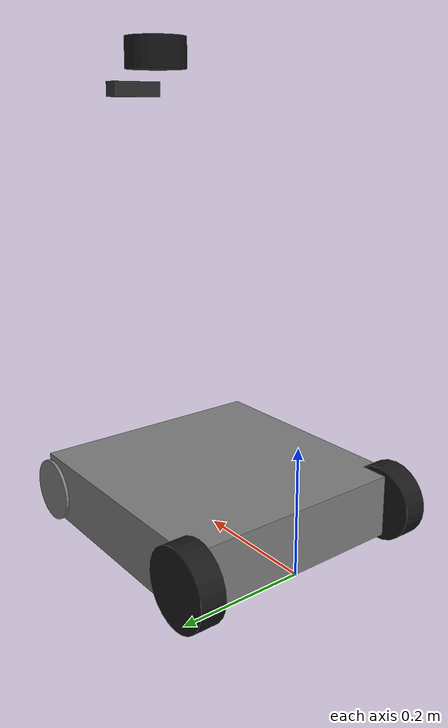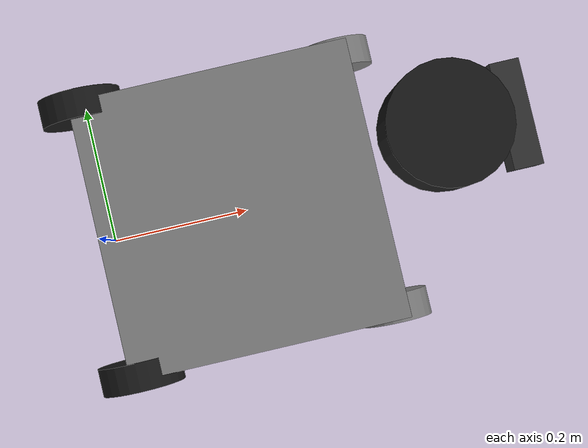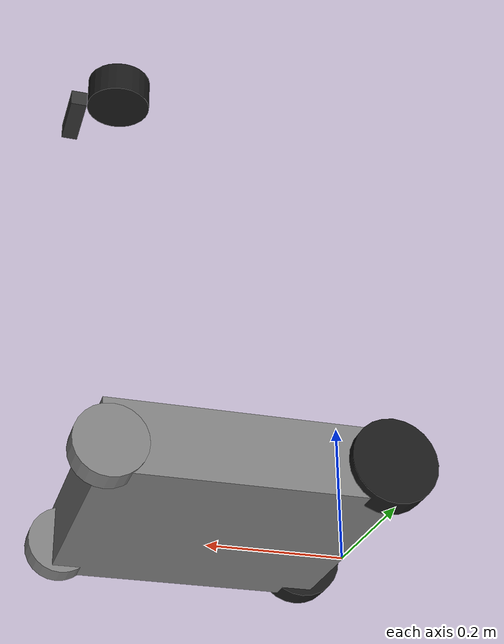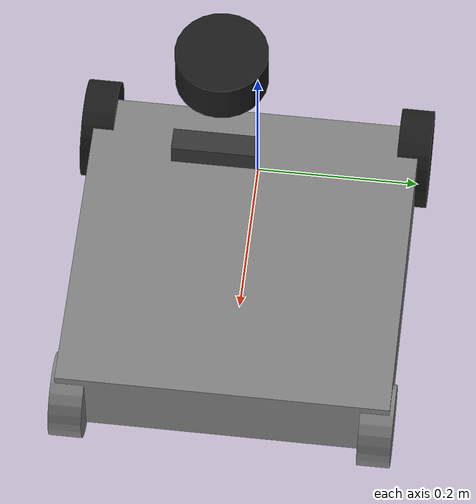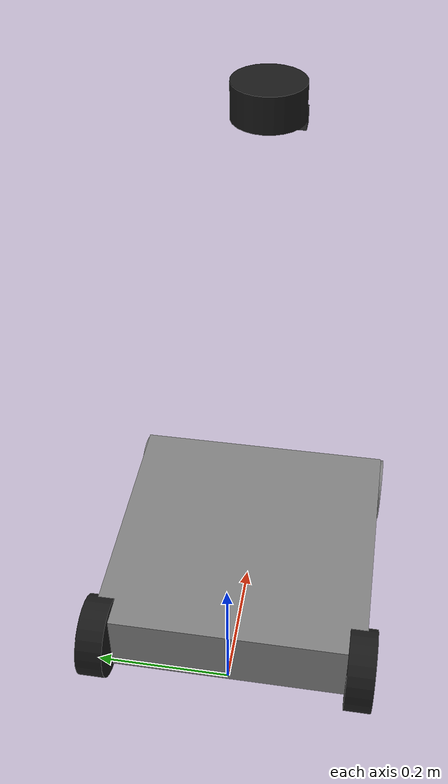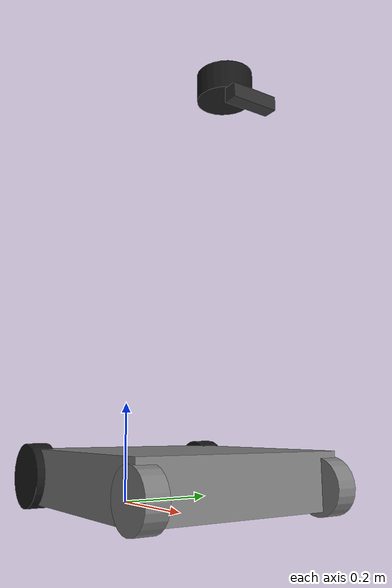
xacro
<?xml version="1.0"?>
<robot name="super_coffee_car" xmlns:xacro="http://www.ros.org/wiki/xacro">

    <xacro:property name="wheelbase" value="0.375" />
    <xacro:property name="rear_track" value="0.39" />
    <xacro:property name="front_track" value="0.37" />

    <xacro:property name="chassis_length" value="0.40" />
    <xacro:property name="chassis_width" value="0.40" />
    <xacro:property name="chassis_height" value="0.10" />
    <xacro:property name="chassis_mass" value="5.0" />

    <xacro:property name="rear_wheel_diameter" value="0.12" />
    <xacro:property name="rear_wheel_radius" value="${rear_wheel_diameter / 2}" />
    <xacro:property name="rear_wheel_width" value="0.04" />
    <xacro:property name="rear_wheel_mass" value="0.5" />

    <xacro:property name="caster_diameter" value="0.10" />
    <xacro:property name="caster_radius" value="${caster_diameter / 2}" />
    <xacro:property name="caster_width" value="0.04" />
    <xacro:property name="caster_mass" value="0.2" />

    <xacro:property name="lidar_offset_x" value="0.35" />
    <xacro:property name="lidar_height_ground" value="0.755" />
    <xacro:property name="lidar_tilt_angle" value="0.0" />

    <xacro:property name="camera_offset_x" value="0.42" />
    <xacro:property name="camera_height_ground" value="0.70" />

    <xacro:property name="lidar_radius" value="0.05" />
    <xacro:property name="lidar_height" value="0.05" />
    <xacro:property name="camera_width" value="0.09" />
    <xacro:property name="camera_height" value="0.025" />
    <xacro:property name="camera_depth" value="0.025" />

    <xacro:property name="PI" value="3.1415926535" />

    <xacro:macro name="Box_inertial_matrix" params="m l w h">
      <inertial>
        <mass value="${m}" />
        <inertia ixx="${m*(h*h + l*l)/12}" ixy = "0" ixz = "0"
                 iyy="${m*(w*w + l*l)/12}" iyz= "0"
                 izz="${m*(w*w + h*h)/12}" />
      </inertial>
    </xacro:macro>

    <xacro:macro name="cylinder_inertial_matrix" params="m r h">
      <inertial>
        <mass value="${m}" />
        <inertia ixx="${m*(3*r*r+h*h)/12}" ixy = "0" ixz = "0"
                 iyy="${m*(3*r*r+h*h)/12}" iyz = "0"
                 izz="${m*r*r/2}" />
      </inertial>
    </xacro:macro>

    <link name="base_footprint" />

    <link name="base_link">
        <visual>
            <origin xyz="${wheelbase / 2} 0 0" rpy="0 0 0"/>
            <geometry>
                <box size="${chassis_length} ${chassis_width} ${chassis_height}"/>
            </geometry>
            <material name="grey">
                <color rgba="0.5 0.5 0.5 1.0"/>
            </material>
        </visual>
        <collision>
            <origin xyz="${wheelbase / 2} 0 0" rpy="0 0 0"/>
            <geometry>
                <box size="${chassis_length} ${chassis_width} ${chassis_height}"/>
            </geometry>
        </collision>
        <inertial>
            <mass value="${chassis_mass}" />
            <origin xyz="${wheelbase / 2} 0 0" rpy="0 0 0"/>
            <inertia ixx="${chassis_mass*(chassis_height*chassis_height + chassis_length*chassis_length)/12}" ixy = "0" ixz = "0"
                     iyy="${chassis_mass*(chassis_width*chassis_width + chassis_length*chassis_length)/12}" iyz= "0"
                     izz="${chassis_mass*(chassis_width*chassis_width + chassis_height*chassis_height)/12}" />
        </inertial>
    </link>

    <joint name="base_footprint_to_base_link" type="fixed">
        <parent link="base_footprint"/>
        <child link="base_link"/>
        <origin xyz="0 0 ${rear_wheel_radius}" rpy="0 0 0"/>
    </joint>

    <xacro:macro name="driving_wheel" params="prefix side reflect">
        <link name="${prefix}_${side}_wheel_link">
            <visual>
                <origin xyz="0 0 0" rpy="${PI/2} 0 0"/>
                <geometry>
                    <cylinder radius="${rear_wheel_radius}" length="${rear_wheel_width}"/>
                </geometry>
                <material name="black">
                    <color rgba="0.1 0.1 0.1 1.0"/>
                </material>
            </visual>
            <collision>
                <origin xyz="0 0 0" rpy="${PI/2} 0 0"/>
                <geometry>
                    <cylinder radius="${rear_wheel_radius}" length="${rear_wheel_width}"/>
                </geometry>
            </collision>
            <xacro:cylinder_inertial_matrix m="${rear_wheel_mass}" r="${rear_wheel_radius}" h="${rear_wheel_width}"/>
        </link>

        <joint name="${prefix}_${side}_wheel_joint" type="continuous">
            <parent link="base_link"/>
            <child link="${prefix}_${side}_wheel_link"/>
            <origin xyz="0 ${reflect * rear_track / 2} 0" rpy="0 0 0"/>
            <axis xyz="0 1 0"/>
        </joint>

        <gazebo reference="${prefix}_${side}_wheel_link">
            <material>Gazebo/Black</material>
        </gazebo>
    </xacro:macro>

    <xacro:macro name="caster_wheel" params="prefix side reflect">
        <link name="${prefix}_${side}_wheel_link">
            <visual>
                <origin xyz="0 0 0" rpy="${PI/2} 0 0"/>
                <geometry>
                    <cylinder radius="${caster_radius}" length="${caster_width}"/>
                </geometry>
                <material name="grey"/>
            </visual>
            <collision>
                <origin xyz="0 0 0" rpy="${PI/2} 0 0"/>
                <geometry>
                    <cylinder radius="${caster_radius}" length="${caster_width}"/>
                </geometry>
            </collision>
            <xacro:cylinder_inertial_matrix m="${caster_mass}" r="${caster_radius}" h="${caster_width}"/>
        </link>

        <joint name="${prefix}_${side}_wheel_joint" type="continuous">
            <parent link="base_link"/>
            <child link="${prefix}_${side}_wheel_link"/>
            <origin xyz="${wheelbase} ${reflect * front_track / 2} ${caster_radius - rear_wheel_radius}" rpy="0 0 0"/>
            <axis xyz="0 1 0"/>
        </joint>

        <gazebo reference="${prefix}_${side}_wheel_link">
            <material>Gazebo/Grey</material>
            <mu1>0.0</mu1>
            <mu2>0.0</mu2>
        </gazebo>
    </xacro:macro>

    <xacro:driving_wheel prefix="rear" side="left" reflect="1"/>
    <xacro:driving_wheel prefix="rear" side="right" reflect="-1"/>

    <xacro:caster_wheel prefix="front" side="left" reflect="1"/>
    <xacro:caster_wheel prefix="front" side="right" reflect="-1"/>

    <link name="mid360_link">
        <visual>
            <geometry>
                <cylinder radius="${lidar_radius}" length="${lidar_height}"/>
            </geometry>
            <material name="black"/>
        </visual>
        <collision>
            <geometry>
                <cylinder radius="${lidar_radius}" length="${lidar_height}"/>
            </geometry>
        </collision>
        <xacro:cylinder_inertial_matrix m="0.2" r="${lidar_radius}" h="${lidar_height}"/>
    </link>

    <joint name="mid360_joint" type="fixed">
        <parent link="base_link"/>
        <child link="mid360_link"/>
        <origin xyz="${lidar_offset_x} 0 ${lidar_height_ground - rear_wheel_radius}" rpy="0 -${lidar_tilt_angle} 0"/>
    </joint>

    <link name="camera_link">
        <visual>
            <geometry>
                <box size="${camera_depth} ${camera_width} ${camera_height}"/>
            </geometry>
            <material name="dark_grey">
                <color rgba="0.2 0.2 0.2 1.0"/>
            </material>
        </visual>
        <collision>
            <geometry>
                <box size="${camera_depth} ${camera_width} ${camera_height}"/>
            </geometry>
        </collision>
        <xacro:Box_inertial_matrix m="0.1" l="${camera_depth}" w="${camera_width}" h="${camera_height}"/>
    </link>

    <joint name="d435i_joint" type="fixed">
        <parent link="base_link"/>
        <child link="camera_link"/>
        <origin xyz="${camera_offset_x} 0 ${camera_height_ground - rear_wheel_radius}"
                rpy="0 0 0"/>
    </joint>

    <gazebo>
        <plugin name="differential_drive_controller" filename="libgazebo_ros_diff_drive.so">
            <robotNamespace>/</robotNamespace>
            <odometrySource>0</odometrySource>
            <publishWheelTF>false</publishWheelTF>
            <publishTf>1</publishTf>
            <publishWheelJointState>true</publishWheelJointState>
            <updateRate>100.0</updateRate>

            <leftJoint>rear_left_wheel_joint</leftJoint>
            <rightJoint>rear_right_wheel_joint</rightJoint>

            <wheelSeparation>${rear_track}</wheelSeparation>
            <wheelDiameter>${rear_wheel_diameter}</wheelDiameter>

            <wheelTorque>50</wheelTorque>
            <wheelAcceleration>3.0</wheelAcceleration>

            <commandTopic>cmd_vel</commandTopic>
            <odometryFrame>odom</odometryFrame>
            <odometryTopic>odom</odometryTopic>
            <robotBaseFrame>base_footprint</robotBaseFrame>
        </plugin>
    </gazebo>

    <gazebo reference="mid360_link">
      <material>Gazebo/Black</material>
      <sensor type="gpu_ray" name="mid360_sensor">
        <pose>0 0 0 0 0 0</pose>
        <visualize>true</visualize>
        <update_rate>10</update_rate>
        <ray>
          <scan>
            <horizontal>
              <samples>360</samples>
              <resolution>1</resolution>
              <min_angle>-${PI}</min_angle>
              <max_angle>${PI}</max_angle>
            </horizontal>
            <vertical>
              <samples>16</samples>
              <resolution>1</resolution>
              <min_angle>-${10*PI/180}</min_angle>
              <max_angle>${70*PI/180}</max_angle>
            </vertical>
          </scan>
          <range>
            <min>0.1</min>
            <max>30.0</max>
            <resolution>0.01</resolution>
          </range>
          <noise>
            <type>gaussian</type>
            <mean>0.0</mean>
            <stddev>0.01</stddev>
          </noise>
        </ray>
        <plugin name="gazebo_ros_gpu_laser" filename="libgazebo_ros_gpu_laser.so">
          <topicName>/mid360/points</topicName>
          <frameName>mid360_link</frameName>
        </plugin>
      </sensor>
    </gazebo>

    <gazebo reference="camera_link">
        <sensor type="depth" name="d435i_camera">
            <always_on>true</always_on>
            <update_rate>20.0</update_rate>
            <camera>
                <horizontal_fov>1.089</horizontal_fov>
                <image>
                    <format>R8G8B8</format>
                    <width>640</width>
                    <height>480</height>
                </image>
                <clip>
                    <near>0.05</near>
                    <far>8.0</far>
                </clip>
            </camera>
            <plugin name="kinect_camera_controller" filename="libgazebo_ros_openni_kinect.so">
                <cameraName>d435i</cameraName>
                <alwaysOn>true</alwaysOn>
                <updateRate>10</updateRate>
                <imageTopicName>rgb/image_raw</imageTopicName>
                <depthImageTopicName>depth/image_raw</depthImageTopicName>
                <pointCloudTopicName>depth/points</pointCloudTopicName>
                <cameraInfoTopicName>rgb/camera_info</cameraInfoTopicName>
                <depthImageCameraInfoTopicName>depth/camera_info</depthImageCameraInfoTopicName>
                <frameName>d435i_depth_optical_frame</frameName>
                <pointCloudCutoff>0.1</pointCloudCutoff>
                <pointCloudCutoffMax>10.0</pointCloudCutoffMax>
            </plugin>
        </sensor>
    </gazebo>
    <gazebo reference="mid360_link">
        <gravity>true</gravity>
        <sensor name="imu_sensor" type="imu">
            <always_on>true</always_on>
            <update_rate>100</update_rate> <visualize>true</visualize>
            <topic>__default_topic__</topic>
            <plugin filename="libgazebo_ros_imu_sensor.so" name="imu_plugin">
                <topicName>/livox/imu</topicName>       <bodyName>mid360_link</bodyName>        <updateRateHZ>100.0</updateRateHZ>
                <gaussianNoise>0.0</gaussianNoise>      <xyzOffset>0 0 0</xyzOffset>
                <rpyOffset>0 0 0</rpyOffset>
                <frameName>mid360_link</frameName>      <initialOrientationAsReference>false</initialOrientationAsReference>
            </plugin>
            <pose>0 0 0 0 0 0</pose>
        </sensor>
    </gazebo>

</robot>
